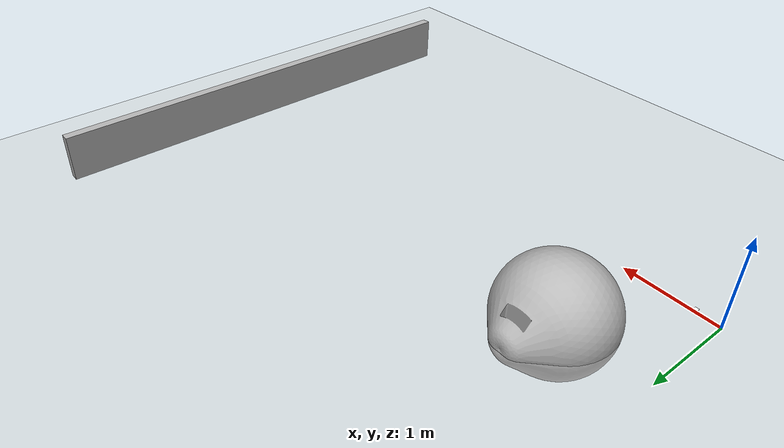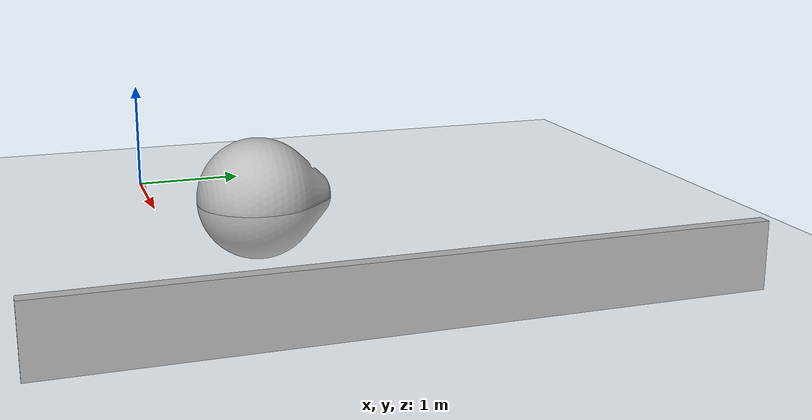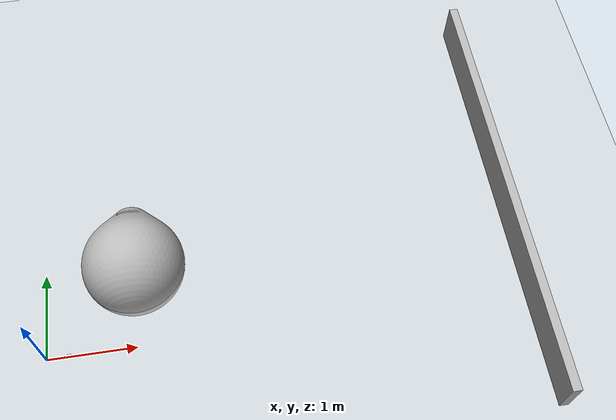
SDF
<?xml version="1.0" ?>
<sdf version='1.10'>
  <world name='empty'>
    <physics name='1ms' type='ignored'>
      <max_step_size>0.0050000000000000001</max_step_size>
      <real_time_factor>1</real_time_factor>
      <real_time_update_rate>500</real_time_update_rate>
    </physics>
    <plugin name='gz::sim::systems::Physics' filename='gz-sim-physics-system'/>
    <plugin name='gz::sim::systems::UserCommands' filename='gz-sim-user-commands-system'/>
    <plugin name='gz::sim::systems::SceneBroadcaster' filename='gz-sim-scene-broadcaster-system'/>
    <plugin name='gz::sim::systems::Contact' filename='gz-sim-contact-system'/>
    <plugin name="gz::sim::systems::Sensors" filename="gz-sim-sensors-system">
      <render_engine>ogre2</render_engine>
    </plugin>
    <gravity>0 0 -9.8000000000000007</gravity>
    <magnetic_field>5.5644999999999998e-06 2.2875799999999999e-05 -4.2388400000000002e-05</magnetic_field>
    <atmosphere type='adiabatic'/>
    <scene>
      <ambient>0.400000006 0.400000006 0.400000006 1</ambient>
      <background>0.699999988 0.699999988 0.699999988 1</background>
      <shadows>true</shadows>
    </scene>
    <gui>
      <camera name='user_camera'>
        <pose>0 0 10 0 -1.5700000000004057 0</pose>
      </camera>
    </gui>

    <model name='ground_plan_a'>
      <static>true</static>
      <link name='link'>
        <collision name='collision'>
          <geometry>
            <plane>
              <normal>0 0 1</normal>
              <size>100 100</size>
            </plane>
          </geometry>
          <surface>
            <friction>
              <ode/>
            </friction>
            <bounce/>
            <contact/>
          </surface>
        </collision>
        <visual name='visual'>
          <geometry>
            <plane>
              <normal>0 0 1</normal>
              <size>100 100</size>
            </plane>
          </geometry>
          <material>
            <ambient>0.800000012 0.800000012 0.800000012 1</ambient>
            <diffuse>0.800000012 0.800000012 0.800000012 1</diffuse>
            <specular>0.800000012 0.800000012 0.800000012 1</specular>
          </material>
        </visual>
        <pose>0 0 0 0 0 0</pose>
        <inertial>
          <pose>0 0 0 0 0 0</pose>
          <mass>1</mass>
          <inertia>
            <ixx>1</ixx>
            <ixy>0</ixy>
            <ixz>0</ixz>
            <iyy>1</iyy>
            <iyz>0</iyz>
            <izz>1</izz>
          </inertia>
        </inertial>
        <enable_wind>false</enable_wind>
      </link>
      <pose>0 0 0 0 0 0</pose>
      <self_collide>false</self_collide>
    </model>
    <model name='box'>
      <pose>5.3351101875305176 1.1423105628707289 0.49999964374511835 2.2249889111800282e-07 3.5031224552452505e-17 -6.3657622294056747e-17</pose>
      <link name='box_link'>
        <inertial>
          <inertia>
            <ixx>0.16666</ixx>
            <ixy>0</ixy>
            <ixz>0</ixz>
            <iyy>0.16666</iyy>
            <iyz>0</iyz>
            <izz>0.16666</izz>
          </inertia>
          <mass>1</mass>
          <pose>0 0 0 0 0 0</pose>
        </inertial>
        <collision name='box_collision'>
          <geometry>
            <box>
              <size>0.10000000000000001 5 0.5</size>
            </box>
          </geometry>
          <surface>
            <friction>
              <ode/>
            </friction>
            <bounce/>
            <contact/>
          </surface>
        </collision>
        <visual name='box_visual'>
          <geometry>
            <box>
              <size>0.10000000000000001 5 0.5</size>
            </box>
          </geometry>
          <material>
            <ambient>0.300000012 0.300000012 0.300000012 1</ambient>
            <diffuse>0.699999988 0.699999988 0.699999988 1</diffuse>
            <specular>1 1 1 1</specular>
          </material>
        </visual>
        <pose>0 0 0 0 0 0</pose>
        <enable_wind>false</enable_wind>
      </link>
      <static>false</static>
      <self_collide>false</self_collide>
    </model>

    <include>
      <uri>model://red_ball</uri>
      <name>red_ball_1</name>
      <pose>1 1 0.02 0 0 0</pose>
    </include>

    <include>
      <uri>model://aruco_cube</uri>
      <name>aruco_cube_1</name>
      <pose>0.25 0 0.02 0 0 0</pose>
    </include>

    <light name='sun' type='directional'>
      <pose>0 0 10 0 0 0</pose>
      <cast_shadows>true</cast_shadows>
      <intensity>1</intensity>
      <direction>-0.5 0.10000000000000001 -0.90000000000000002</direction>
      <diffuse>0.800000012 0.800000012 0.800000012 1</diffuse>
      <specular>0.200000003 0.200000003 0.200000003 1</specular>
      <attenuation>
        <range>1000</range>
        <linear>0.0099999997764825821</linear>
        <constant>0.89999997615814209</constant>
        <quadratic>0.0010000000474974513</quadratic>
      </attenuation>
      <spot>
        <inner_angle>0</inner_angle>
        <outer_angle>0</outer_angle>
        <falloff>0</falloff>
      </spot>
    </light>
  </world>
</sdf>

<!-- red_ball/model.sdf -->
<sdf version="1.6">
    <model name="red_ball">
        <link name="link">
            <inertial>
                <origin xyz="0 0 0.5"/>
                <pose>0 0 0 0 0 0</pose>
                <mass>3.5</mass>
                <inertia>

                    <ixx>0.0875</ixx>
                    <ixy>0</ixy>
                    <ixz>0</ixz>
                    <iyy>0.0875</iyy>
                    <iyz>0</iyz>
                    <izz>0.0875</izz>
                </inertia>
            </inertial>
            <collision name="collision">
                <geometry>
                    <mesh>
                        <uri>meshes/red_ball.obj</uri>
                        <scale>0.1 0.1 0.1</scale>
                    </mesh>
                </geometry>
            </collision>
            <visual name="visual">
                <geometry>
                    <mesh>
                        <uri>meshes/red_ball.obj</uri>
                        <scale>0.1 0.1 0.1</scale>
                    </mesh>
                </geometry>
            </visual>
        </link>
    </model>
</sdf>

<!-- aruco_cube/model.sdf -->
<sdf version='1.9'>
  <model name='aruco_cube'>
    <link name="cube_link">

        <!-- 질량 및 관성 정보 -->
        <inertial>
            <mass>0.05</mass>
            <inertia>
                <ixx>0.00002083</ixx>
                <ixy>0</ixy>
                <ixz>0</ixz>
                <iyy>0.00002083</iyy>
                <iyz>0</iyz>
                <izz>0.00002083</izz>
            </inertia>
        </inertial>

        <collision name="cube_collision">
            <geometry>
                <box>
                    <size>0.04 0.04 0.04</size>
                </box>
            </geometry>
            <!-- 그리핑 시 미끄러짐 방지를 위한 표면 마찰력 -->
            <surface>
                <friction>
                    <ode>
                        <mu>100.0</mu>
                        <mu2>100.0</mu2>
                    </ode>
                </friction>
            </surface>
        </collision>

        <visual name="cube_visual">
            <geometry>
                <box>
                    <size>0.04 0.04 0.04</size>
                </box>
            </geometry>
            <material>
                <ambient>1 1 1 1</ambient>
                <diffuse>1 1 1 1</diffuse>
                <specular>0.1 0.1 0.1 1</specular>
            </material>
        </visual>

    </link>
  </model>
</sdf>
